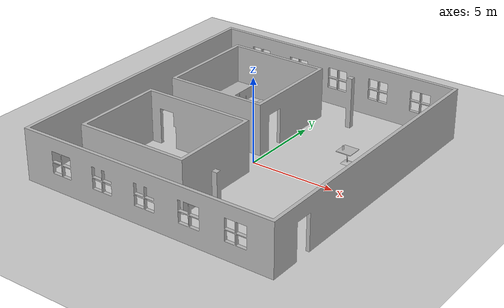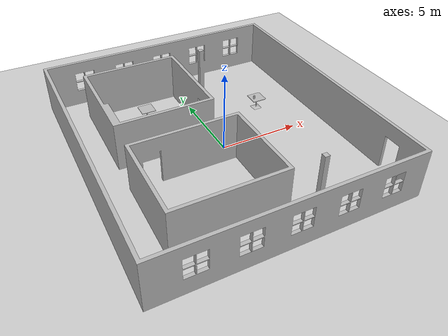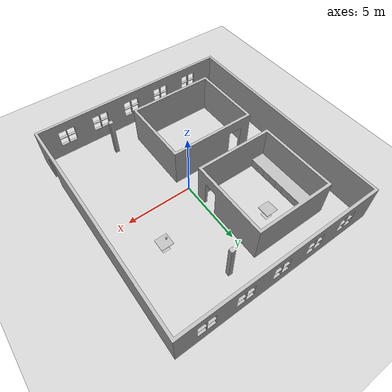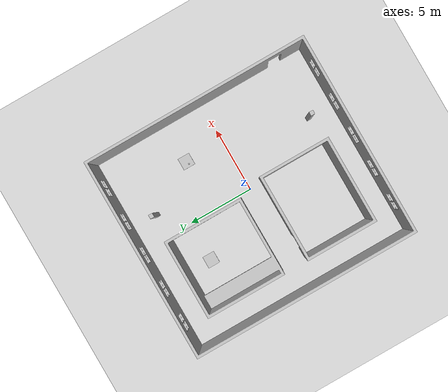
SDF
<sdf version="1.6">
 <world name="default">
  <model name="ground_plane">
   <static>1</static>
   <link name="link">
    <collision name="collision">
     <geometry><plane><normal>0 0 1</normal><size>100 100</size></plane></geometry>
     <surface><friction><ode><mu>100</mu><mu2>50</mu2></ode></friction></surface>
    </collision>
    <visual name="visual">
     <cast_shadows>0</cast_shadows>
     <geometry><plane><normal>0 0 1</normal><size>100 100</size></plane></geometry>
     <material>
      <script><uri>file://media/materials/scripts/gazebo.material</uri><name>Gazebo/Grey</name></script>
     </material>
    </visual>
   </link>
  </model>
  <light name="sun" type="directional">
   <pose>0 0 10 0 -0 0</pose>
   <diffuse>0.8 0.8 0.8 1</diffuse>
   <specular>0.2 0.2 0.2 1</specular>
   <attenuation>
    <range>1000</range>
    <constant>0.9</constant>
    <linear>0.01</linear>
    <quadratic>0.001</quadratic>
   </attenuation>
   <direction>-0.5 0.1 -0.9</direction>
  </light>
  <model name="test_zone">
   <link name="link">
    <inertial>
     <mass>15</mass>
     <inertia><ixx>0</ixx><ixy>0</ixy><ixz>0</ixz><iyy>0</iyy><iyz>0</iyz><izz>0.1</izz></inertia>
    </inertial>
    <collision name="collision">
     <pose>-8.12 8.8 0 1.57 -0 0</pose>
     <geometry><mesh><uri>model://test_zone/meshes/building.dae</uri></mesh></geometry>
    </collision>
    <visual name="visual">
     <pose>-8.12 8.8 0 1.57 -0 0</pose>
     <geometry><mesh><uri>model://test_zone/meshes/building.dae</uri></mesh></geometry>
    </visual>
   </link>
   <static>1</static>
  </model>
  <model name="table1">
   <static>1</static>
   <link name="link">
    <collision name="surface">
     <pose>0 0 0.755 0 -0 0</pose>
     <geometry><box><size>0.913 0.913 0.04</size></box></geometry>
    </collision>
    <collision name="column">
     <pose>0 0 0.37 0 -0 0</pose>
     <geometry><box><size>0.042 0.042 0.74</size></box></geometry>
    </collision>
    <collision name="base">
     <pose>0 0 0.02 0 -0 0</pose>
     <geometry><box><size>0.56 0.56 0.04</size></box></geometry>
    </collision>
    <visual name="visual">
     <geometry><mesh><uri>model://cafe_table/meshes/cafe_table.dae</uri></mesh></geometry>
    </visual>
   </link>
   <pose>4.05 3 0 0 -0 1.57</pose>
  </model>
  <model name="table2">
   <static>1</static>
   <link name="link">
    <collision name="surface">
     <pose>0 0 0.755 0 -0 0</pose>
     <geometry><box><size>0.913 0.913 0.04</size></box></geometry>
    </collision>
    <collision name="column">
     <pose>0 0 0.37 0 -0 0</pose>
     <geometry><box><size>0.042 0.042 0.74</size></box></geometry>
    </collision>
    <collision name="base">
     <pose>0 0 0.02 0 -0 0</pose>
     <geometry><box><size>0.56 0.56 0.04</size></box></geometry>
    </collision>
    <visual name="visual">
     <geometry><mesh><uri>model://cafe_table/meshes/cafe_table.dae</uri></mesh></geometry>
    </visual>
   </link>
   <pose>-3 5 0 0 -0 1.57</pose>
  </model>
  <gravity>0 0 -9.8</gravity>
  <magnetic_field>6e-06 2.3e-05 -4.2e-05</magnetic_field>
  <atmosphere type="adiabatic"/>
  <physics name="default_physics" default="0" type="ode">
   <max_step_size>0.001</max_step_size>
   <real_time_factor>1</real_time_factor>
   <real_time_update_rate>1000</real_time_update_rate>
  </physics>
  <scene><ambient>0.4 0.4 0.4 1</ambient><background>0.7 0.7 0.7 1</background><shadows>1</shadows></scene>
  <audio><device>default</device></audio>
  <spherical_coordinates>
   <surface_model>EARTH_WGS84</surface_model>
   <latitude_deg>0</latitude_deg>
   <longitude_deg>0</longitude_deg>
   <elevation>0</elevation>
   <heading_deg>0</heading_deg>
  </spherical_coordinates>
  <model name="beer">
   <link name="link">
    <pose>0 0 0.115 0 -0 0</pose>
    <inertial>
     <mass>0.39</mass>
     <inertia><ixx>0.00058</ixx><ixy>0</ixy><ixz>0</ixz><iyy>0.00058</iyy><iyz>0</iyz><izz>0.00019</izz></inertia>
    </inertial>
    <collision name="collision">
     <geometry><cylinder><radius>0.055</radius><length>0.23</length></cylinder></geometry>
    </collision>
    <visual name="visual">
     <geometry><cylinder><radius>0.055</radius><length>0.23</length></cylinder></geometry>
     <material>
      <script>
       <uri>model://beer/materials/scripts</uri>
       <uri>model://beer/materials/textures</uri>
       <name>Beer/Diffuse</name>
      </script>
     </material>
    </visual>
   </link>
   <pose>3.81388 2.91234 0.774999 2e-05 1.8e-05 0.000203</pose>
  </model>
 </world>
</sdf>
